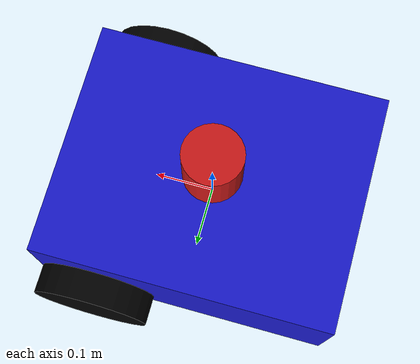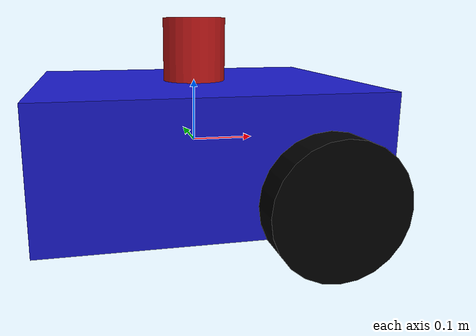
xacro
<?xml version="1.0"?>
<robot xmlns:xacro="http://www.ros.org/wiki/xacro" name="terrain_bot">

  <!-- Base Link -->
  <link name="base_link">
    <visual>
      <geometry>
        <box size="0.5 0.4 0.2"/>
      </geometry>
      <material name="blue">
        <color rgba="0.1 0.1 0.8 1.0"/>
      </material>
    </visual>
    <collision>
      <geometry>
        <box size="0.5 0.4 0.2"/>
      </geometry>
    </collision>
    <inertial>
      <mass value="5.0"/>
      <inertia ixx="0.08" ixy="0" ixz="0" iyy="0.12" iyz="0" izz="0.17"/>
    </inertial>
  </link>

  <!-- Left Wheel -->
  <link name="left_wheel">
    <visual>
      <geometry>
        <cylinder length="0.05" radius="0.1"/>
      </geometry>
      <material name="black">
        <color rgba="0.0 0.0 0.0 1.0"/>
      </material>
    </visual>
    <collision>
      <geometry>
        <cylinder length="0.05" radius="0.1"/>
      </geometry>
    </collision>
    <inertial>
      <mass value="1.0"/>
      <inertia ixx="0.003" ixy="0" ixz="0" iyy="0.003" iyz="0" izz="0.005"/>
    </inertial>
  </link>

  <joint name="left_wheel_joint" type="continuous">
    <parent link="base_link"/>
    <child link="left_wheel"/>
    <origin xyz="0.15 0.225 -0.05" rpy="-1.5708 0 0"/>
    <axis xyz="0 0 1"/>
  </joint>

  <!-- Right Wheel -->
  <link name="right_wheel">
    <visual>
      <geometry>
        <cylinder length="0.05" radius="0.1"/>
      </geometry>
      <material name="black">
        <color rgba="0.0 0.0 0.0 1.0"/>
      </material>
    </visual>
    <collision>
      <geometry>
        <cylinder length="0.05" radius="0.1"/>
      </geometry>
    </collision>
    <inertial>
      <mass value="1.0"/>
      <inertia ixx="0.003" ixy="0" ixz="0" iyy="0.003" iyz="0" izz="0.005"/>
    </inertial>
  </link>

  <joint name="right_wheel_joint" type="continuous">
    <parent link="base_link"/>
    <child link="right_wheel"/>
    <origin xyz="0.15 -0.225 -0.05" rpy="-1.5708 0 0"/>
    <axis xyz="0 0 1"/>
  </joint>

  <!-- Caster Wheel -->
  <link name="caster">
    <visual>
      <geometry>
        <sphere radius="0.05"/>
      </geometry>
      <material name="grey">
        <color rgba="0.5 0.5 0.5 1.0"/>
      </material>
    </visual>
    <collision>
      <geometry>
        <sphere radius="0.05"/>
      </geometry>
    </collision>
    <inertial>
      <mass value="0.5"/>
      <inertia ixx="0.0005" ixy="0" ixz="0" iyy="0.0005" iyz="0" izz="0.0005"/>
    </inertial>
  </link>

  <joint name="caster_joint" type="fixed">
    <parent link="base_link"/>
    <child link="caster"/>
    <origin xyz="-0.2 0 -0.1"/>
  </joint>

  <!-- LiDAR Link -->
  <link name="lidar_link">
    <visual>
      <geometry>
        <cylinder length="0.1" radius="0.05"/>
      </geometry>
      <material name="red">
        <color rgba="0.8 0.1 0.1 1.0"/>
      </material>
    </visual>
    <collision>
      <geometry>
        <cylinder length="0.1" radius="0.05"/>
      </geometry>
    </collision>
    <inertial>
      <mass value="0.5"/>
      <inertia ixx="0.001" ixy="0" ixz="0" iyy="0.001" iyz="0" izz="0.001"/>
    </inertial>
  </link>

  <joint name="lidar_joint" type="fixed">
    <parent link="base_link"/>
    <child link="lidar_link"/>
    <origin xyz="0 0 0.15"/>
  </joint>

  <!-- Modern Gazebo Diff Drive Plugin (motor control only, no odom) -->
  <gazebo>
    <plugin
      filename="gz-sim-diff-drive-system"
      name="gz::sim::systems::DiffDrive">
      <left_joint>left_wheel_joint</left_joint>
      <right_joint>right_wheel_joint</right_joint>
      <wheel_separation>0.45</wheel_separation>
      <wheel_radius>0.1</wheel_radius>
      <odom_publish_frequency>0</odom_publish_frequency>
      <topic>cmd_vel</topic>
    </plugin>
  </gazebo>

  <!-- Ground Truth Odometry from simulation pose (no wheel slip) -->
  <gazebo>
    <plugin
      filename="gz-sim-odometry-publisher-system"
      name="gz::sim::systems::OdometryPublisher">
      <odom_publish_frequency>50</odom_publish_frequency>
      <odom_topic>odom</odom_topic>
      <odom_frame>odom</odom_frame>
      <robot_base_frame>base_link</robot_base_frame>
      <tf_topic>tf</tf_topic>
    </plugin>
  </gazebo>

  <!-- Modern Gazebo Joint State Publisher -->
  <gazebo>
    <plugin filename="gz-sim-joint-state-publisher-system"
      name="gz::sim::systems::JointStatePublisher">
      <topic>joint_states</topic>
      <joint_name>left_wheel_joint</joint_name>
      <joint_name>right_wheel_joint</joint_name>
    </plugin>
  </gazebo>

  <!-- Modern Gazebo LiDAR Plugin -->
  <gazebo reference="lidar_link">
    <sensor name="lidar" type="gpu_lidar">
      <topic>scan_3d</topic>
      <gz_frame_id>lidar_link</gz_frame_id>
      <ignition_frame_id>lidar_link</ignition_frame_id>
      <update_rate>10</update_rate>
      <ray>
        <scan>
          <horizontal>
            <samples>360</samples>
            <resolution>1</resolution>
            <min_angle>-3.14159</min_angle>
            <max_angle>3.14159</max_angle>
          </horizontal>
          <vertical>
            <samples>32</samples>
            <resolution>1</resolution>
            <min_angle>-0.26</min_angle>
            <max_angle>0.26</max_angle>
          </vertical>
        </scan>
        <range>
          <min>0.3</min>
          <max>15.0</max>
          <resolution>0.01</resolution>
        </range>
      </ray>
      <always_on>1</always_on>
      <visualize>true</visualize>
    </sensor>
  </gazebo>

</robot>
